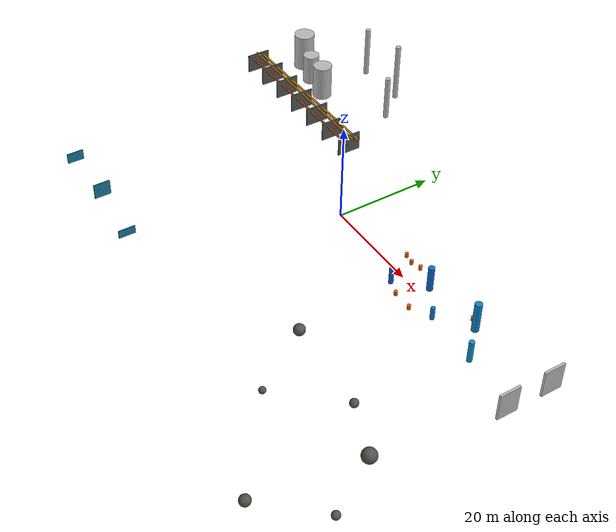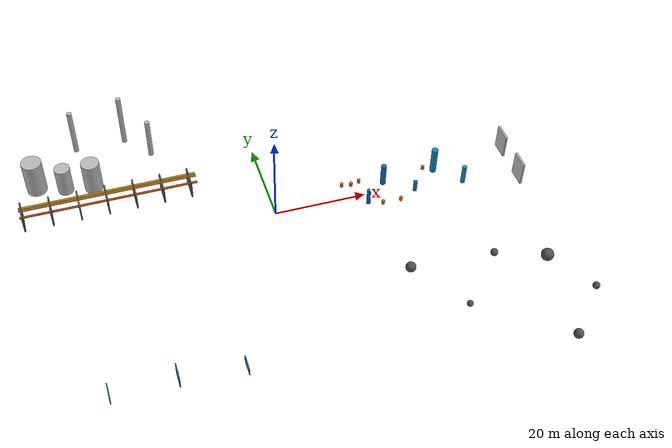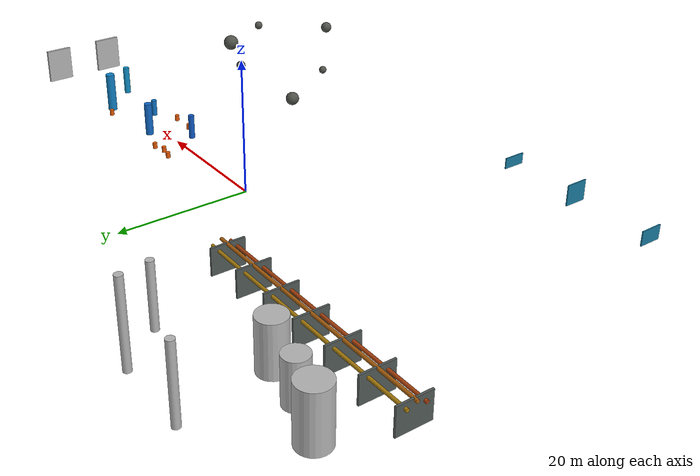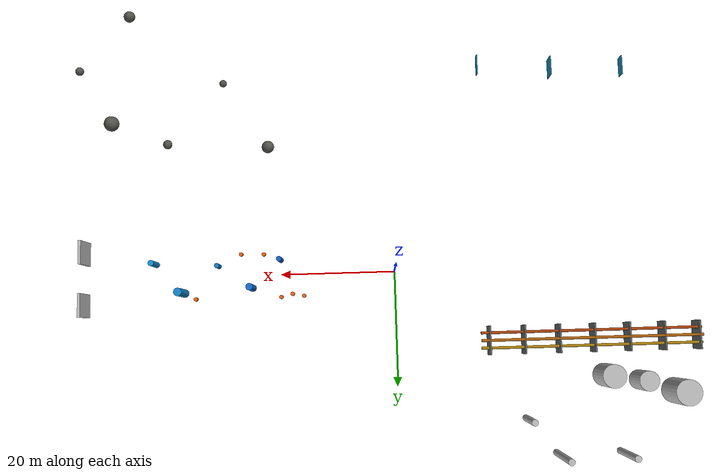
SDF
<sdf version="1.6">
 <world name="uav_complex_120m">
  <model name="corridor_pillar_0">
   <static>true</static>
   <link name="body">
    <pose>20 -2.6 1.9 0 0 0</pose>
    <collision name="collision">
     <geometry><cylinder><radius>0.45</radius><length>3.8</length></cylinder></geometry>
     <laser_retro>100</laser_retro>
     <surface><friction><ode><mu>1.0</mu><mu2>1.0</mu2></ode></friction></surface>
    </collision>
    <visual name="visual">
     <geometry><cylinder><radius>0.45</radius><length>3.8</length></cylinder></geometry>
     <material>
      <ambient>0.06 0.36 0.78 1</ambient>
      <diffuse>0.06 0.36 0.78 1</diffuse>
      <specular>0.08 0.08 0.08 1</specular>
     </material>
    </visual>
   </link>
  </model>
  <model name="corridor_pillar_1">
   <static>true</static>
   <link name="body">
    <pose>25 2.2 2.6 0 0 0</pose>
    <collision name="collision">
     <geometry><cylinder><radius>0.6</radius><length>5.2</length></cylinder></geometry>
     <laser_retro>100</laser_retro>
     <surface><friction><ode><mu>1.0</mu><mu2>1.0</mu2></ode></friction></surface>
    </collision>
    <visual name="visual">
     <geometry><cylinder><radius>0.6</radius><length>5.2</length></cylinder></geometry>
     <material>
      <ambient>0.06 0.41 0.78 1</ambient>
      <diffuse>0.06 0.41 0.78 1</diffuse>
      <specular>0.08 0.08 0.08 1</specular>
     </material>
    </visual>
   </link>
  </model>
  <model name="corridor_pillar_2">
   <static>true</static>
   <link name="body">
    <pose>31 -1.8 1.3 0 0 0</pose>
    <collision name="collision">
     <geometry><cylinder><radius>0.42</radius><length>2.6</length></cylinder></geometry>
     <laser_retro>100</laser_retro>
     <surface><friction><ode><mu>1.0</mu><mu2>1.0</mu2></ode></friction></surface>
    </collision>
    <visual name="visual">
     <geometry><cylinder><radius>0.42</radius><length>2.6</length></cylinder></geometry>
     <material>
      <ambient>0.06 0.46 0.78 1</ambient>
      <diffuse>0.06 0.46 0.78 1</diffuse>
      <specular>0.08 0.08 0.08 1</specular>
     </material>
    </visual>
   </link>
  </model>
  <model name="corridor_pillar_3">
   <static>true</static>
   <link name="body">
    <pose>37 2.8 3.1 0 0 0</pose>
    <collision name="collision">
     <geometry><cylinder><radius>0.7</radius><length>6.2</length></cylinder></geometry>
     <laser_retro>100</laser_retro>
     <surface><friction><ode><mu>1.0</mu><mu2>1.0</mu2></ode></friction></surface>
    </collision>
    <visual name="visual">
     <geometry><cylinder><radius>0.7</radius><length>6.2</length></cylinder></geometry>
     <material>
      <ambient>0.06 0.51 0.78 1</ambient>
      <diffuse>0.06 0.51 0.78 1</diffuse>
      <specular>0.08 0.08 0.08 1</specular>
     </material>
    </visual>
   </link>
  </model>
  <model name="corridor_pillar_4">
   <static>true</static>
   <link name="body">
    <pose>42 -2.4 2.25 0 0 0</pose>
    <collision name="collision">
     <geometry><cylinder><radius>0.5</radius><length>4.5</length></cylinder></geometry>
     <laser_retro>100</laser_retro>
     <surface><friction><ode><mu>1.0</mu><mu2>1.0</mu2></ode></friction></surface>
    </collision>
    <visual name="visual">
     <geometry><cylinder><radius>0.5</radius><length>4.5</length></cylinder></geometry>
     <material>
      <ambient>0.06 0.56 0.78 1</ambient>
      <diffuse>0.06 0.56 0.78 1</diffuse>
      <specular>0.08 0.08 0.08 1</specular>
     </material>
    </visual>
   </link>
  </model>
  <model name="gap_wall_north_54m">
   <static>true</static>
   <link name="body">
    <pose>54 4.55 2.75 0 0 0</pose>
    <collision name="collision">
     <geometry><box><size>0.45 4.1 5.5</size></box></geometry>
     <laser_retro>100</laser_retro>
     <surface><friction><ode><mu>1.0</mu><mu2>1.0</mu2></ode></friction></surface>
    </collision>
    <visual name="visual">
     <geometry><box><size>0.45 4.1 5.5</size></box></geometry>
     <material>
      <script>
       <uri>model://uav_complex_scene/materials/scripts</uri>
       <uri>model://uav_complex_scene/materials/textures</uri>
       <name>UAVComplex/Brick</name>
      </script>
     </material>
    </visual>
   </link>
  </model>
  <model name="gap_wall_south_54m">
   <static>true</static>
   <link name="body">
    <pose>54 -4.55 2.75 0 0 0</pose>
    <collision name="collision">
     <geometry><box><size>0.45 4.1 5.5</size></box></geometry>
     <laser_retro>100</laser_retro>
     <surface><friction><ode><mu>1.0</mu><mu2>1.0</mu2></ode></friction></surface>
    </collision>
    <visual name="visual">
     <geometry><box><size>0.45 4.1 5.5</size></box></geometry>
     <material>
      <script>
       <uri>model://uav_complex_scene/materials/scripts</uri>
       <uri>model://uav_complex_scene/materials/textures</uri>
       <name>UAVComplex/Brick</name>
      </script>
     </material>
    </visual>
   </link>
  </model>
  <model name="corridor_barrel_0">
   <static>true</static>
   <link name="body">
    <pose>16 3.8 0.45 0 0 0</pose>
    <collision name="collision">
     <geometry><cylinder><radius>0.34</radius><length>0.9</length></cylinder></geometry>
     <laser_retro>100</laser_retro>
     <surface><friction><ode><mu>1.0</mu><mu2>1.0</mu2></ode></friction></surface>
    </collision>
    <visual name="visual">
     <geometry><cylinder><radius>0.34</radius><length>0.9</length></cylinder></geometry>
     <material>
      <ambient>0.92 0.36 0.025 1</ambient>
      <diffuse>0.92 0.36 0.025 1</diffuse>
      <specular>0.08 0.08 0.08 1</specular>
     </material>
    </visual>
   </link>
  </model>
  <model name="corridor_barrel_1">
   <static>true</static>
   <link name="body">
    <pose>18 3.4 0.45 0 0 0</pose>
    <collision name="collision">
     <geometry><cylinder><radius>0.34</radius><length>0.9</length></cylinder></geometry>
     <laser_retro>100</laser_retro>
     <surface><friction><ode><mu>1.0</mu><mu2>1.0</mu2></ode></friction></surface>
    </collision>
    <visual name="visual">
     <geometry><cylinder><radius>0.34</radius><length>0.9</length></cylinder></geometry>
     <material>
      <ambient>0.92 0.36 0.025 1</ambient>
      <diffuse>0.92 0.36 0.025 1</diffuse>
      <specular>0.08 0.08 0.08 1</specular>
     </material>
    </visual>
   </link>
  </model>
  <model name="corridor_barrel_2">
   <static>true</static>
   <link name="body">
    <pose>20 3.9 0.45 0 0 0</pose>
    <collision name="collision">
     <geometry><cylinder><radius>0.34</radius><length>0.9</length></cylinder></geometry>
     <laser_retro>100</laser_retro>
     <surface><friction><ode><mu>1.0</mu><mu2>1.0</mu2></ode></friction></surface>
    </collision>
    <visual name="visual">
     <geometry><cylinder><radius>0.34</radius><length>0.9</length></cylinder></geometry>
     <material>
      <ambient>0.92 0.36 0.025 1</ambient>
      <diffuse>0.92 0.36 0.025 1</diffuse>
      <specular>0.08 0.08 0.08 1</specular>
     </material>
    </visual>
   </link>
  </model>
  <model name="corridor_barrel_3">
   <static>true</static>
   <link name="body">
    <pose>23 -3.7 0.45 0 0 0</pose>
    <collision name="collision">
     <geometry><cylinder><radius>0.34</radius><length>0.9</length></cylinder></geometry>
     <laser_retro>100</laser_retro>
     <surface><friction><ode><mu>1.0</mu><mu2>1.0</mu2></ode></friction></surface>
    </collision>
    <visual name="visual">
     <geometry><cylinder><radius>0.34</radius><length>0.9</length></cylinder></geometry>
     <material>
      <ambient>0.92 0.36 0.025 1</ambient>
      <diffuse>0.92 0.36 0.025 1</diffuse>
      <specular>0.08 0.08 0.08 1</specular>
     </material>
    </visual>
   </link>
  </model>
  <model name="corridor_barrel_4">
   <static>true</static>
   <link name="body">
    <pose>27 -3.8 0.45 0 0 0</pose>
    <collision name="collision">
     <geometry><cylinder><radius>0.34</radius><length>0.9</length></cylinder></geometry>
     <laser_retro>100</laser_retro>
     <surface><friction><ode><mu>1.0</mu><mu2>1.0</mu2></ode></friction></surface>
    </collision>
    <visual name="visual">
     <geometry><cylinder><radius>0.34</radius><length>0.9</length></cylinder></geometry>
     <material>
      <ambient>0.92 0.36 0.025 1</ambient>
      <diffuse>0.92 0.36 0.025 1</diffuse>
      <specular>0.08 0.08 0.08 1</specular>
     </material>
    </visual>
   </link>
  </model>
  <model name="corridor_barrel_5">
   <static>true</static>
   <link name="body">
    <pose>35 3.9 0.45 0 0 0</pose>
    <collision name="collision">
     <geometry><cylinder><radius>0.34</radius><length>0.9</length></cylinder></geometry>
     <laser_retro>100</laser_retro>
     <surface><friction><ode><mu>1.0</mu><mu2>1.0</mu2></ode></friction></surface>
    </collision>
    <visual name="visual">
     <geometry><cylinder><radius>0.34</radius><length>0.9</length></cylinder></geometry>
     <material>
      <ambient>0.92 0.36 0.025 1</ambient>
      <diffuse>0.92 0.36 0.025 1</diffuse>
      <specular>0.08 0.08 0.08 1</specular>
     </material>
    </visual>
   </link>
  </model>
  <model name="industrial_silo_0">
   <static>true</static>
   <link name="body">
    <pose>-48 22 4 0 0 0</pose>
    <collision name="collision">
     <geometry><cylinder><radius>2.2</radius><length>8</length></cylinder></geometry>
     <laser_retro>100</laser_retro>
     <surface><friction><ode><mu>1.0</mu><mu2>1.0</mu2></ode></friction></surface>
    </collision>
    <visual name="visual">
     <geometry><cylinder><radius>2.2</radius><length>8</length></cylinder></geometry>
     <material>
      <script>
       <uri>model://uav_complex_scene/materials/scripts</uri>
       <uri>model://uav_complex_scene/materials/textures</uri>
       <name>UAVComplex/RustedSteel</name>
      </script>
     </material>
    </visual>
   </link>
  </model>
  <model name="industrial_silo_1">
   <static>true</static>
   <link name="body">
    <pose>-42 20 3.25 0 0 0</pose>
    <collision name="collision">
     <geometry><cylinder><radius>1.7</radius><length>6.5</length></cylinder></geometry>
     <laser_retro>100</laser_retro>
     <surface><friction><ode><mu>1.0</mu><mu2>1.0</mu2></ode></friction></surface>
    </collision>
    <visual name="visual">
     <geometry><cylinder><radius>1.7</radius><length>6.5</length></cylinder></geometry>
     <material>
      <script>
       <uri>model://uav_complex_scene/materials/scripts</uri>
       <uri>model://uav_complex_scene/materials/textures</uri>
       <name>UAVComplex/RustedSteel</name>
      </script>
     </material>
    </visual>
   </link>
  </model>
  <model name="industrial_silo_2">
   <static>true</static>
   <link name="body">
    <pose>-36 19 3.7 0 0 0</pose>
    <collision name="collision">
     <geometry><cylinder><radius>2</radius><length>7.4</length></cylinder></geometry>
     <laser_retro>100</laser_retro>
     <surface><friction><ode><mu>1.0</mu><mu2>1.0</mu2></ode></friction></surface>
    </collision>
    <visual name="visual">
     <geometry><cylinder><radius>2</radius><length>7.4</length></cylinder></geometry>
     <material>
      <script>
       <uri>model://uav_complex_scene/materials/scripts</uri>
       <uri>model://uav_complex_scene/materials/textures</uri>
       <name>UAVComplex/RustedSteel</name>
      </script>
     </material>
    </visual>
   </link>
  </model>
  <model name="smokestack_0">
   <static>true</static>
   <link name="body">
    <pose>-38 32 5.5 0 0 0</pose>
    <collision name="collision">
     <geometry><cylinder><radius>0.55</radius><length>11</length></cylinder></geometry>
     <laser_retro>100</laser_retro>
     <surface><friction><ode><mu>1.0</mu><mu2>1.0</mu2></ode></friction></surface>
    </collision>
    <visual name="visual">
     <geometry><cylinder><radius>0.55</radius><length>11</length></cylinder></geometry>
     <material>
      <script>
       <uri>model://uav_complex_scene/materials/scripts</uri>
       <uri>model://uav_complex_scene/materials/textures</uri>
       <name>UAVComplex/Brick</name>
      </script>
     </material>
    </visual>
   </link>
  </model>
  <model name="smokestack_1">
   <static>true</static>
   <link name="body">
    <pose>-27 32 6.25 0 0 0</pose>
    <collision name="collision">
     <geometry><cylinder><radius>0.55</radius><length>12.5</length></cylinder></geometry>
     <laser_retro>100</laser_retro>
     <surface><friction><ode><mu>1.0</mu><mu2>1.0</mu2></ode></friction></surface>
    </collision>
    <visual name="visual">
     <geometry><cylinder><radius>0.55</radius><length>12.5</length></cylinder></geometry>
     <material>
      <script>
       <uri>model://uav_complex_scene/materials/scripts</uri>
       <uri>model://uav_complex_scene/materials/textures</uri>
       <name>UAVComplex/Brick</name>
      </script>
     </material>
    </visual>
   </link>
  </model>
  <model name="smokestack_2">
   <static>true</static>
   <link name="body">
    <pose>-22 26 4.75 0 0 0</pose>
    <collision name="collision">
     <geometry><cylinder><radius>0.55</radius><length>9.5</length></cylinder></geometry>
     <laser_retro>100</laser_retro>
     <surface><friction><ode><mu>1.0</mu><mu2>1.0</mu2></ode></friction></surface>
    </collision>
    <visual name="visual">
     <geometry><cylinder><radius>0.55</radius><length>9.5</length></cylinder></geometry>
     <material>
      <script>
       <uri>model://uav_complex_scene/materials/scripts</uri>
       <uri>model://uav_complex_scene/materials/textures</uri>
       <name>UAVComplex/Brick</name>
      </script>
     </material>
    </visual>
   </link>
  </model>
  <model name="industrial_pipe_rack">
   <static>true</static>
   <link name="support_0">
    <pose>-52 12.5 2 0 0 0</pose>
    <collision name="collision">
     <geometry><box><size>0.3 5 4</size></box></geometry>
     <laser_retro>100</laser_retro>
     <surface><friction><ode><mu>1.0</mu><mu2>1.0</mu2></ode></friction></surface>
    </collision>
    <visual name="visual">
     <geometry><box><size>0.3 5 4</size></box></geometry>
     <material>
      <ambient>0.32 0.35 0.34 1</ambient>
      <diffuse>0.32 0.35 0.34 1</diffuse>
      <specular>0.08 0.08 0.08 1</specular>
     </material>
    </visual>
   </link>
   <link name="support_1">
    <pose>-46 12.5 2 0 0 0</pose>
    <collision name="collision">
     <geometry><box><size>0.3 5 4</size></box></geometry>
     <laser_retro>100</laser_retro>
     <surface><friction><ode><mu>1.0</mu><mu2>1.0</mu2></ode></friction></surface>
    </collision>
    <visual name="visual">
     <geometry><box><size>0.3 5 4</size></box></geometry>
     <material>
      <ambient>0.32 0.35 0.34 1</ambient>
      <diffuse>0.32 0.35 0.34 1</diffuse>
      <specular>0.08 0.08 0.08 1</specular>
     </material>
    </visual>
   </link>
   <link name="support_2">
    <pose>-40 12.5 2 0 0 0</pose>
    <collision name="collision">
     <geometry><box><size>0.3 5 4</size></box></geometry>
     <laser_retro>100</laser_retro>
     <surface><friction><ode><mu>1.0</mu><mu2>1.0</mu2></ode></friction></surface>
    </collision>
    <visual name="visual">
     <geometry><box><size>0.3 5 4</size></box></geometry>
     <material>
      <ambient>0.32 0.35 0.34 1</ambient>
      <diffuse>0.32 0.35 0.34 1</diffuse>
      <specular>0.08 0.08 0.08 1</specular>
     </material>
    </visual>
   </link>
   <link name="support_3">
    <pose>-34 12.5 2 0 0 0</pose>
    <collision name="collision">
     <geometry><box><size>0.3 5 4</size></box></geometry>
     <laser_retro>100</laser_retro>
     <surface><friction><ode><mu>1.0</mu><mu2>1.0</mu2></ode></friction></surface>
    </collision>
    <visual name="visual">
     <geometry><box><size>0.3 5 4</size></box></geometry>
     <material>
      <ambient>0.32 0.35 0.34 1</ambient>
      <diffuse>0.32 0.35 0.34 1</diffuse>
      <specular>0.08 0.08 0.08 1</specular>
     </material>
    </visual>
   </link>
   <link name="support_4">
    <pose>-28 12.5 2 0 0 0</pose>
    <collision name="collision">
     <geometry><box><size>0.3 5 4</size></box></geometry>
     <laser_retro>100</laser_retro>
     <surface><friction><ode><mu>1.0</mu><mu2>1.0</mu2></ode></friction></surface>
    </collision>
    <visual name="visual">
     <geometry><box><size>0.3 5 4</size></box></geometry>
     <material>
      <ambient>0.32 0.35 0.34 1</ambient>
      <diffuse>0.32 0.35 0.34 1</diffuse>
      <specular>0.08 0.08 0.08 1</specular>
     </material>
    </visual>
   </link>
   <link name="support_5">
    <pose>-22 12.5 2 0 0 0</pose>
    <collision name="collision">
     <geometry><box><size>0.3 5 4</size></box></geometry>
     <laser_retro>100</laser_retro>
     <surface><friction><ode><mu>1.0</mu><mu2>1.0</mu2></ode></friction></surface>
    </collision>
    <visual name="visual">
     <geometry><box><size>0.3 5 4</size></box></geometry>
     <material>
      <ambient>0.32 0.35 0.34 1</ambient>
      <diffuse>0.32 0.35 0.34 1</diffuse>
      <specular>0.08 0.08 0.08 1</specular>
     </material>
    </visual>
   </link>
   <link name="support_6">
    <pose>-16 12.5 2 0 0 0</pose>
    <collision name="collision">
     <geometry><box><size>0.3 5 4</size></box></geometry>
     <laser_retro>100</laser_retro>
     <surface><friction><ode><mu>1.0</mu><mu2>1.0</mu2></ode></friction></surface>
    </collision>
    <visual name="visual">
     <geometry><box><size>0.3 5 4</size></box></geometry>
     <material>
      <ambient>0.32 0.35 0.34 1</ambient>
      <diffuse>0.32 0.35 0.34 1</diffuse>
      <specular>0.08 0.08 0.08 1</specular>
     </material>
    </visual>
   </link>
   <link name="pipe_0">
    <pose>-33.5 11.2 3.1 0 1.5708 0</pose>
    <collision name="collision">
     <geometry><cylinder><radius>0.24</radius><length>38</length></cylinder></geometry>
     <laser_retro>100</laser_retro>
     <surface><friction><ode><mu>1.0</mu><mu2>1.0</mu2></ode></friction></surface>
    </collision>
    <visual name="visual">
     <geometry><cylinder><radius>0.24</radius><length>38</length></cylinder></geometry>
     <material>
      <ambient>0.68 0.26 0.05 1</ambient>
      <diffuse>0.68 0.26 0.05 1</diffuse>
      <specular>0.08 0.08 0.08 1</specular>
     </material>
    </visual>
   </link>
   <link name="pipe_1">
    <pose>-33.5 12.5 3.8 0 1.5708 0</pose>
    <collision name="collision">
     <geometry><cylinder><radius>0.24</radius><length>38</length></cylinder></geometry>
     <laser_retro>100</laser_retro>
     <surface><friction><ode><mu>1.0</mu><mu2>1.0</mu2></ode></friction></surface>
    </collision>
    <visual name="visual">
     <geometry><cylinder><radius>0.24</radius><length>38</length></cylinder></geometry>
     <material>
      <ambient>0.68 0.38 0.05 1</ambient>
      <diffuse>0.68 0.38 0.05 1</diffuse>
      <specular>0.08 0.08 0.08 1</specular>
     </material>
    </visual>
   </link>
   <link name="pipe_2">
    <pose>-33.5 13.8 3.25 0 1.5708 0</pose>
    <collision name="collision">
     <geometry><cylinder><radius>0.24</radius><length>38</length></cylinder></geometry>
     <laser_retro>100</laser_retro>
     <surface><friction><ode><mu>1.0</mu><mu2>1.0</mu2></ode></friction></surface>
    </collision>
    <visual name="visual">
     <geometry><cylinder><radius>0.24</radius><length>38</length></cylinder></geometry>
     <material>
      <ambient>0.68 0.5 0.05 1</ambient>
      <diffuse>0.68 0.5 0.05 1</diffuse>
      <specular>0.08 0.08 0.08 1</specular>
     </material>
    </visual>
   </link>
  </model>
  <model name="urban_sign_0">
   <static>true</static>
   <link name="body">
    <pose>-42 -36 1.1 0 0 0</pose>
    <collision name="collision">
     <geometry><box><size>0.18 3.4 2.2</size></box></geometry>
     <laser_retro>100</laser_retro>
     <surface><friction><ode><mu>1.0</mu><mu2>1.0</mu2></ode></friction></surface>
    </collision>
    <visual name="visual">
     <geometry><box><size>0.18 3.4 2.2</size></box></geometry>
     <material>
      <ambient>0.1 0.48 0.62 1</ambient>
      <diffuse>0.1 0.48 0.62 1</diffuse>
      <specular>0.08 0.08 0.08 1</specular>
     </material>
    </visual>
   </link>
  </model>
  <model name="urban_sign_1">
   <static>true</static>
   <link name="body">
    <pose>-29 -36 1.6 0 0 0</pose>
    <collision name="collision">
     <geometry><box><size>0.18 3.4 3.2</size></box></geometry>
     <laser_retro>100</laser_retro>
     <surface><friction><ode><mu>1.0</mu><mu2>1.0</mu2></ode></friction></surface>
    </collision>
    <visual name="visual">
     <geometry><box><size>0.18 3.4 3.2</size></box></geometry>
     <material>
      <ambient>0.1 0.48 0.62 1</ambient>
      <diffuse>0.1 0.48 0.62 1</diffuse>
      <specular>0.08 0.08 0.08 1</specular>
     </material>
    </visual>
   </link>
  </model>
  <model name="urban_sign_2">
   <static>true</static>
   <link name="body">
    <pose>-16 -37 0.85 0 0 0</pose>
    <collision name="collision">
     <geometry><box><size>0.18 3.4 1.7</size></box></geometry>
     <laser_retro>100</laser_retro>
     <surface><friction><ode><mu>1.0</mu><mu2>1.0</mu2></ode></friction></surface>
    </collision>
    <visual name="visual">
     <geometry><box><size>0.18 3.4 1.7</size></box></geometry>
     <material>
      <ambient>0.1 0.48 0.62 1</ambient>
      <diffuse>0.1 0.48 0.62 1</diffuse>
      <specular>0.08 0.08 0.08 1</specular>
     </material>
    </visual>
   </link>
  </model>
  <model name="boulder_0">
   <static>true</static>
   <link name="body">
    <pose>22 -23 0.792 0 0 0</pose>
    <collision name="collision">
     <geometry><sphere><radius>1.1</radius></sphere></geometry>
     <laser_retro>100</laser_retro>
     <surface><friction><ode><mu>1.0</mu><mu2>1.0</mu2></ode></friction></surface>
    </collision>
    <visual name="visual">
     <geometry><sphere><radius>1.1</radius></sphere></geometry>
     <material>
      <ambient>0.31 0.32 0.29 1</ambient>
      <diffuse>0.31 0.32 0.29 1</diffuse>
      <specular>0.08 0.08 0.08 1</specular>
     </material>
    </visual>
   </link>
  </model>
  <model name="boulder_1">
   <static>true</static>
   <link name="body">
    <pose>40 -24 0.576 0 0 0</pose>
    <collision name="collision">
     <geometry><sphere><radius>0.8</radius></sphere></geometry>
     <laser_retro>100</laser_retro>
     <surface><friction><ode><mu>1.0</mu><mu2>1.0</mu2></ode></friction></surface>
    </collision>
    <visual name="visual">
     <geometry><sphere><radius>0.8</radius></sphere></geometry>
     <material>
      <ambient>0.31 0.32 0.29 1</ambient>
      <diffuse>0.31 0.32 0.29 1</diffuse>
      <specular>0.08 0.08 0.08 1</specular>
     </material>
    </visual>
   </link>
  </model>
  <model name="boulder_2">
   <static>true</static>
   <link name="body">
    <pose>50 -28 0.972 0 0 0</pose>
    <collision name="collision">
     <geometry><sphere><radius>1.35</radius></sphere></geometry>
     <laser_retro>100</laser_retro>
     <surface><friction><ode><mu>1.0</mu><mu2>1.0</mu2></ode></friction></surface>
    </collision>
    <visual name="visual">
     <geometry><sphere><radius>1.35</radius></sphere></geometry>
     <material>
      <ambient>0.31 0.32 0.29 1</ambient>
      <diffuse>0.31 0.32 0.29 1</diffuse>
      <specular>0.08 0.08 0.08 1</specular>
     </material>
    </visual>
   </link>
  </model>
  <model name="boulder_3">
   <static>true</static>
   <link name="body">
    <pose>30 -35 0.468 0 0 0</pose>
    <collision name="collision">
     <geometry><sphere><radius>0.65</radius></sphere></geometry>
     <laser_retro>100</laser_retro>
     <surface><friction><ode><mu>1.0</mu><mu2>1.0</mu2></ode></friction></surface>
    </collision>
    <visual name="visual">
     <geometry><sphere><radius>0.65</radius></sphere></geometry>
     <material>
      <ambient>0.31 0.32 0.29 1</ambient>
      <diffuse>0.31 0.32 0.29 1</diffuse>
      <specular>0.08 0.08 0.08 1</specular>
     </material>
    </visual>
   </link>
  </model>
  <model name="boulder_4">
   <static>true</static>
   <link name="body">
    <pose>47 -48 0.72 0 0 0</pose>
    <collision name="collision">
     <geometry><sphere><radius>1</radius></sphere></geometry>
     <laser_retro>100</laser_retro>
     <surface><friction><ode><mu>1.0</mu><mu2>1.0</mu2></ode></friction></surface>
    </collision>
    <visual name="visual">
     <geometry><sphere><radius>1</radius></sphere></geometry>
     <material>
      <ambient>0.31 0.32 0.29 1</ambient>
      <diffuse>0.31 0.32 0.29 1</diffuse>
      <specular>0.08 0.08 0.08 1</specular>
     </material>
    </visual>
   </link>
  </model>
  <model name="boulder_5">
   <static>true</static>
   <link name="body">
    <pose>56 -38 0.54 0 0 0</pose>
    <collision name="collision">
     <geometry><sphere><radius>0.75</radius></sphere></geometry>
     <laser_retro>100</laser_retro>
     <surface><friction><ode><mu>1.0</mu><mu2>1.0</mu2></ode></friction></surface>
    </collision>
    <visual name="visual">
     <geometry><sphere><radius>0.75</radius></sphere></geometry>
     <material>
      <ambient>0.31 0.32 0.29 1</ambient>
      <diffuse>0.31 0.32 0.29 1</diffuse>
      <specular>0.08 0.08 0.08 1</specular>
     </material>
    </visual>
   </link>
  </model>
 </world>
</sdf>
